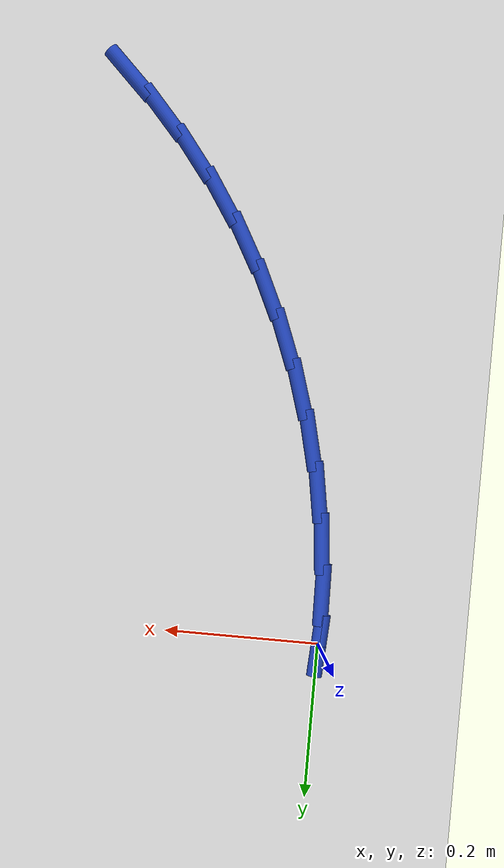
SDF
<sdf version="1.6">
 <world name="default">
  <model name="ground_plane">
   <static>1</static>
   <link name="link">
    <collision name="collision">
     <geometry><plane><normal>0 0 1</normal><size>100 100</size></plane></geometry>
     <surface><friction><ode><mu>100</mu><mu2>50</mu2></ode></friction></surface>
    </collision>
    <visual name="visual">
     <cast_shadows>0</cast_shadows>
     <geometry><plane><normal>0 0 1</normal><size>100 100</size></plane></geometry>
     <material>
      <script><uri>file://media/materials/scripts/gazebo.material</uri><name>Gazebo/WhiteGlow</name></script>
     </material>
    </visual>
   </link>
  </model>
  <model name="line">
   <link name="link_0">
    <pose>7.632783294297951e-17 1.6653345369377348e-16 0.01 0 1.57 1.5119159760984504</pose>
    <collision name="collision">
     <geometry><cylinder><radius>0.01</radius><length>0.08</length></cylinder></geometry>
    </collision>
    <visual name="visual">
     <material>
      <script><name>Gazebo/Blue</name><uri>file://media/materials/scripts/gazebo.material</uri></script>
     </material>
     <geometry><cylinder><radius>0.01</radius><length>0.08</length></cylinder></geometry>
    </visual>
   </link>
   <link name="link_98">
    <pose>0.3076006531847103 -0.7151663365260698 0.01 0 1.57 -0.7812421459322082</pose>
    <collision name="collision">
     <geometry><cylinder><radius>0.01</radius><length>0.08</length></cylinder></geometry>
    </collision>
    <visual name="visual">
     <material>
      <script><name>Gazebo/Blue</name><uri>file://media/materials/scripts/gazebo.material</uri></script>
     </material>
     <geometry><cylinder><radius>0.01</radius><length>0.08</length></cylinder></geometry>
    </visual>
   </link>
   <link name="link_99">
    <pose>0.26057599216586774 -0.6685309306222896 0.01 0 1.57 -0.8468089852224381</pose>
    <collision name="collision">
     <geometry><cylinder><radius>0.01</radius><length>0.08</length></cylinder></geometry>
    </collision>
    <visual name="visual">
     <material>
      <script><name>Gazebo/Blue</name><uri>file://media/materials/scripts/gazebo.material</uri></script>
     </material>
     <geometry><cylinder><radius>0.01</radius><length>0.08</length></cylinder></geometry>
    </visual>
   </link>
   <link name="link_100">
    <pose>0.21672605985252402 -0.6189351984139775 0.01 0 1.57 -0.9164040555164029</pose>
    <collision name="collision">
     <geometry><cylinder><radius>0.01</radius><length>0.08</length></cylinder></geometry>
    </collision>
    <visual name="visual">
     <material>
      <script><name>Gazebo/Blue</name><uri>file://media/materials/scripts/gazebo.material</uri></script>
     </material>
     <geometry><cylinder><radius>0.01</radius><length>0.08</length></cylinder></geometry>
    </visual>
   </link>
   <link name="link_101">
    <pose>0.17632963726005083 -0.5662779777206435 0.01 0 1.57 -0.9894669644913413</pose>
    <collision name="collision">
     <geometry><cylinder><radius>0.01</radius><length>0.08</length></cylinder></geometry>
    </collision>
    <visual name="visual">
     <material>
      <script><name>Gazebo/Blue</name><uri>file://media/materials/scripts/gazebo.material</uri></script>
     </material>
     <geometry><cylinder><radius>0.01</radius><length>0.08</length></cylinder></geometry>
    </visual>
   </link>
   <link name="link_102">
    <pose>0.13966204220683962 -0.5104732842356648 0.01 0 1.57 -1.0624063655957772</pose>
    <collision name="collision">
     <geometry><cylinder><radius>0.01</radius><length>0.08</length></cylinder></geometry>
    </collision>
    <visual name="visual">
     <material>
      <script><name>Gazebo/Blue</name><uri>file://media/materials/scripts/gazebo.material</uri></script>
     </material>
     <geometry><cylinder><radius>0.01</radius><length>0.08</length></cylinder></geometry>
    </visual>
   </link>
   <link name="link_103">
    <pose>0.10693021409155927 -0.451734810233518 0.01 0 1.57 -1.132838214901276</pose>
    <collision name="collision">
     <geometry><cylinder><radius>0.01</radius><length>0.08</length></cylinder></geometry>
    </collision>
    <visual name="visual">
     <material>
      <script><name>Gazebo/Blue</name><uri>file://media/materials/scripts/gazebo.material</uri></script>
     </material>
     <geometry><cylinder><radius>0.01</radius><length>0.08</length></cylinder></geometry>
    </visual>
   </link>
   <link name="link_104">
    <pose>0.0782784467805416 -0.3905507995069307 0.01 0 1.57 -1.201574850431859</pose>
    <collision name="collision">
     <geometry><cylinder><radius>0.01</radius><length>0.08</length></cylinder></geometry>
    </collision>
    <visual name="visual">
     <material>
      <script><name>Gazebo/Blue</name><uri>file://media/materials/scripts/gazebo.material</uri></script>
     </material>
     <geometry><cylinder><radius>0.01</radius><length>0.08</length></cylinder></geometry>
    </visual>
   </link>
   <link name="link_105">
    <pose>0.05384872027728808 -0.3274196366285086 0.01 0 1.57 -1.2695419696116421</pose>
    <collision name="collision">
     <geometry><cylinder><radius>0.01</radius><length>0.08</length></cylinder></geometry>
    </collision>
    <visual name="visual">
     <material>
      <script><name>Gazebo/Blue</name><uri>file://media/materials/scripts/gazebo.material</uri></script>
     </material>
     <geometry><cylinder><radius>0.01</radius><length>0.08</length></cylinder></geometry>
    </visual>
   </link>
   <link name="link_106">
    <pose>0.03378301458529873 -0.2628397061708539 0.01 0 1.57 -1.337670618316063</pose>
    <collision name="collision">
     <geometry><cylinder><radius>0.01</radius><length>0.08</length></cylinder></geometry>
    </collision>
    <visual name="visual">
     <material>
      <script><name>Gazebo/Blue</name><uri>file://media/materials/scripts/gazebo.material</uri></script>
     </material>
     <geometry><cylinder><radius>0.01</radius><length>0.08</length></cylinder></geometry>
    </visual>
   </link>
   <link name="link_107">
    <pose>0.018223309708074724 -0.19730939270657222 0.01 0 1.57 -1.4069061553595206</pose>
    <collision name="collision">
     <geometry><cylinder><radius>0.01</radius><length>0.08</length></cylinder></geometry>
    </collision>
    <visual name="visual">
     <material>
      <script><name>Gazebo/Blue</name><uri>file://media/materials/scripts/gazebo.material</uri></script>
     </material>
     <geometry><cylinder><radius>0.01</radius><length>0.08</length></cylinder></geometry>
    </visual>
   </link>
   <link name="link_108">
    <pose>0.0073115856491163984 -0.13132708080826616 0.01 0 1.57 -1.4782176050177471</pose>
    <collision name="collision">
     <geometry><cylinder><radius>0.01</radius><length>0.08</length></cylinder></geometry>
    </collision>
    <visual name="visual">
     <material>
      <script><name>Gazebo/Blue</name><uri>file://media/materials/scripts/gazebo.material</uri></script>
     </material>
     <geometry><cylinder><radius>0.01</radius><length>0.08</length></cylinder></geometry>
    </visual>
   </link>
   <link name="link_109">
    <pose>0.0011898224119246646 -0.06539115504854129 0.01 0 1.57 -1.5526028703505956</pose>
    <collision name="collision">
     <geometry><cylinder><radius>0.01</radius><length>0.08</length></cylinder></geometry>
    </collision>
    <visual name="visual">
     <material>
      <script><name>Gazebo/Blue</name><uri>file://media/materials/scripts/gazebo.material</uri></script>
     </material>
     <geometry><cylinder><radius>0.01</radius><length>0.08</length></cylinder></geometry>
    </visual>
   </link>
   <link name="link_110">
    <pose>8.673617379884035e-17 -2.7755575615628914e-17 0.01 0 1.57 1.5105086477651337</pose>
    <collision name="collision">
     <geometry><cylinder><radius>0.01</radius><length>0.08</length></cylinder></geometry>
    </collision>
    <visual name="visual">
     <material>
      <script><name>Gazebo/Blue</name><uri>file://media/materials/scripts/gazebo.material</uri></script>
     </material>
     <geometry><cylinder><radius>0.01</radius><length>0.08</length></cylinder></geometry>
    </visual>
   </link>
  </model>
 </world>
</sdf>
